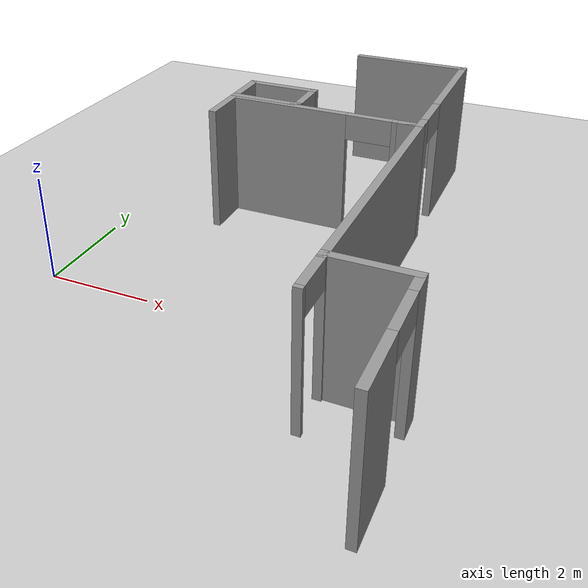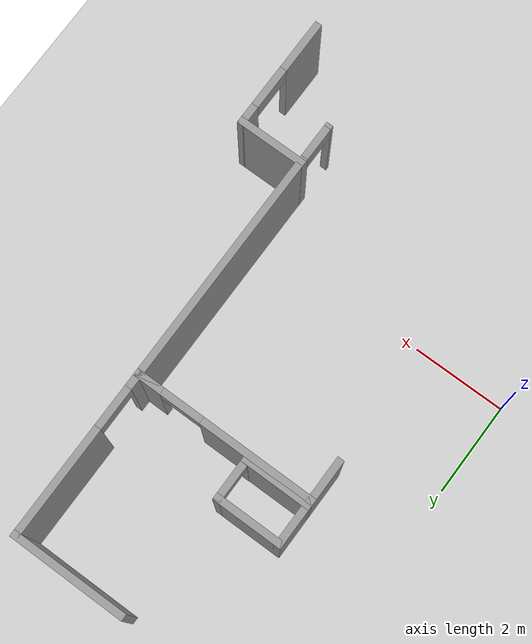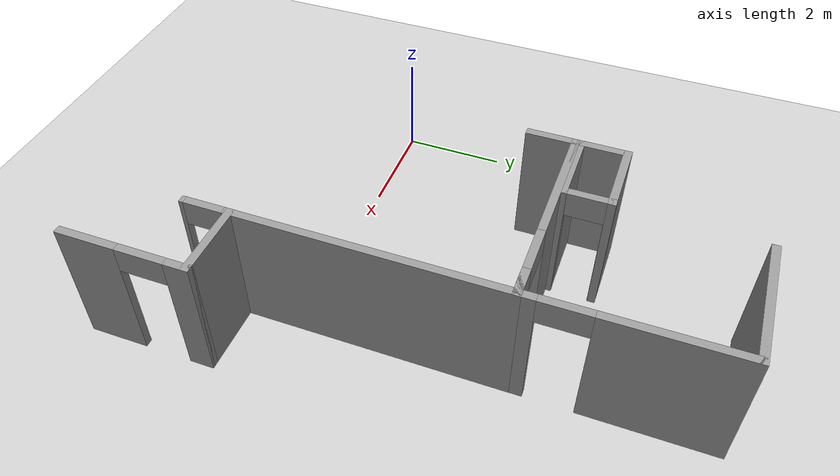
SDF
<sdf version="1.6">
 <world name="default">
  <model name="ground_plane">
   <static>1</static>
   <link name="link">
    <collision name="collision">
     <geometry><plane><normal>0 0 1</normal><size>100 100</size></plane></geometry>
     <surface><friction><ode><mu>100</mu><mu2>50</mu2></ode></friction></surface>
    </collision>
    <visual name="visual">
     <cast_shadows>0</cast_shadows>
     <geometry><plane><normal>0 0 1</normal><size>100 100</size></plane></geometry>
     <material>
      <script><uri>file://media/materials/scripts/gazebo.material</uri><name>Gazebo/Grey</name></script>
     </material>
    </visual>
   </link>
  </model>
  <model name="cma_L3">
   <pose>6.37221 -2.26022 0 0 -0 0</pose>
   <link name="Wall_12">
    <pose>-0.675 0.75 0 0 -0 1.5708</pose>
    <visual name="Wall_12_Visual_0">
     <pose>-0.46 0 1.25 0 -0 0</pose>
     <geometry><box><size>0.08 0.15 2.5</size></box></geometry>
     <material>
      <script><uri>file://media/materials/scripts/gazebo.material</uri><name>Gazebo/Grey</name></script>
      <ambient>1 1 1 1</ambient>
     </material>
    </visual>
    <collision name="Wall_12_Collision_0">
     <geometry><box><size>0.08 0.15 2.5</size></box></geometry>
     <pose>-0.46 0 1.25 0 -0 0</pose>
    </collision>
    <visual name="Wall_12_Visual_1">
     <pose>0.405 0 1.25 0 -0 0</pose>
     <geometry><box><size>0.19 0.15 2.5</size></box></geometry>
     <material>
      <script><uri>file://media/materials/scripts/gazebo.material</uri><name>Gazebo/Grey</name></script>
      <ambient>1 1 1 1</ambient>
     </material>
    </visual>
    <collision name="Wall_12_Collision_1">
     <geometry><box><size>0.19 0.15 2.5</size></box></geometry>
     <pose>0.405 0 1.25 0 -0 0</pose>
    </collision>
    <visual name="Wall_12_Visual_2">
     <pose>-0.055 0 2.25 0 -0 0</pose>
     <geometry><box><size>0.73 0.15 0.5</size></box></geometry>
     <material>
      <script><uri>file://media/materials/scripts/gazebo.material</uri><name>Gazebo/Grey</name></script>
      <ambient>1 1 1 1</ambient>
     </material>
    </visual>
    <collision name="Wall_12_Collision_2">
     <geometry><box><size>0.73 0.15 0.5</size></box></geometry>
     <pose>-0.055 0 2.25 0 -0 0</pose>
    </collision>
   </link>
   <link name="Wall_13">
    <collision name="Wall_13_Collision">
     <geometry><box><size>1.5 0.15 2.5</size></box></geometry>
     <pose>0 0 1.25 0 -0 0</pose>
    </collision>
    <visual name="Wall_13_Visual">
     <pose>0 0 1.25 0 -0 0</pose>
     <geometry><box><size>1.5 0.15 2.5</size></box></geometry>
     <material>
      <script><uri>file://media/materials/scripts/gazebo.material</uri><name>Gazebo/Grey</name></script>
      <ambient>1 1 1 1</ambient>
     </material>
    </visual>
    <pose>0 1.175 0 0 -0 0</pose>
   </link>
   <link name="Wall_14">
    <pose>0.675 0 0 0 0 -1.5708</pose>
    <visual name="Wall_14_Visual_0">
     <pose>-1.0175 0 1.25 0 -0 0</pose>
     <geometry><box><size>0.465 0.15 2.5</size></box></geometry>
     <material>
      <script><uri>file://media/materials/scripts/gazebo.material</uri><name>Gazebo/Grey</name></script>
      <ambient>1 1 1 1</ambient>
     </material>
    </visual>
    <collision name="Wall_14_Collision_0">
     <geometry><box><size>0.465 0.15 2.5</size></box></geometry>
     <pose>-1.0175 0 1.25 0 -0 0</pose>
    </collision>
    <visual name="Wall_14_Visual_1">
     <pose>0.6825 0 1.25 0 -0 0</pose>
     <geometry><box><size>1.135 0.15 2.5</size></box></geometry>
     <material>
      <script><uri>file://media/materials/scripts/gazebo.material</uri><name>Gazebo/Grey</name></script>
      <ambient>1 1 1 1</ambient>
     </material>
    </visual>
    <collision name="Wall_14_Collision_1">
     <geometry><box><size>1.135 0.15 2.5</size></box></geometry>
     <pose>0.6825 0 1.25 0 -0 0</pose>
    </collision>
    <visual name="Wall_14_Visual_2">
     <pose>-0.335 0 2.25 0 -0 0</pose>
     <geometry><box><size>0.9 0.15 0.5</size></box></geometry>
     <material>
      <script><uri>file://media/materials/scripts/gazebo.material</uri><name>Gazebo/Grey</name></script>
      <ambient>1 1 1 1</ambient>
     </material>
    </visual>
    <collision name="Wall_14_Collision_2">
     <geometry><box><size>0.9 0.15 0.5</size></box></geometry>
     <pose>-0.335 0 2.25 0 -0 0</pose>
    </collision>
   </link>
   <static>1</static>
  </model>
  <model name="cma_L5">
   <pose>3.77502 1.45512 0 0 -0 0</pose>
   <link name="Wall_0">
    <collision name="Wall_0_Collision">
     <geometry><box><size>1 0.15 2.5</size></box></geometry>
     <pose>0 0 1.25 0 -0 0</pose>
    </collision>
    <visual name="Wall_0_Visual">
     <pose>0 0 1.25 0 -0 0</pose>
     <geometry><box><size>1 0.15 2.5</size></box></geometry>
     <material>
      <script><uri>file://media/materials/scripts/gazebo.material</uri><name>Gazebo/Grey</name></script>
      <ambient>1 1 1 1</ambient>
     </material>
    </visual>
    <pose>-1.925 2 0 0 -0 1.5708</pose>
   </link>
   <link name="Wall_1">
    <pose>0 2.425 0 0 -0 0</pose>
    <visual name="Wall_1_Visual_0">
     <pose>-0.7525 0 1.25 0 -0 0</pose>
     <geometry><box><size>2.495 0.15 2.5</size></box></geometry>
     <material>
      <script><uri>file://media/materials/scripts/gazebo.material</uri><name>Gazebo/Grey</name></script>
      <ambient>1 1 1 1</ambient>
     </material>
    </visual>
    <collision name="Wall_1_Collision_0">
     <geometry><box><size>2.495 0.15 2.5</size></box></geometry>
     <pose>-0.7525 0 1.25 0 -0 0</pose>
    </collision>
    <visual name="Wall_1_Visual_1">
     <pose>1.6975 0 1.25 0 -0 0</pose>
     <geometry><box><size>0.605 0.15 2.5</size></box></geometry>
     <material>
      <script><uri>file://media/materials/scripts/gazebo.material</uri><name>Gazebo/Grey</name></script>
      <ambient>1 1 1 1</ambient>
     </material>
    </visual>
    <collision name="Wall_1_Collision_1">
     <geometry><box><size>0.605 0.15 2.5</size></box></geometry>
     <pose>1.6975 0 1.25 0 -0 0</pose>
    </collision>
    <visual name="Wall_1_Visual_2">
     <pose>0.945 0 2.25 0 -0 0</pose>
     <geometry><box><size>0.9 0.15 0.5</size></box></geometry>
     <material>
      <script><uri>file://media/materials/scripts/gazebo.material</uri><name>Gazebo/Grey</name></script>
      <ambient>1 1 1 1</ambient>
     </material>
    </visual>
    <collision name="Wall_1_Collision_2">
     <geometry><box><size>0.9 0.15 0.5</size></box></geometry>
     <pose>0.945 0 2.25 0 -0 0</pose>
    </collision>
   </link>
   <link name="Wall_3">
    <collision name="Wall_3_Collision">
     <geometry><box><size>5 0.15 2.5</size></box></geometry>
     <pose>0 0 1.25 0 -0 0</pose>
    </collision>
    <visual name="Wall_3_Visual">
     <pose>0 0 1.25 0 -0 0</pose>
     <geometry><box><size>5 0.15 2.5</size></box></geometry>
     <material>
      <script><uri>file://media/materials/scripts/gazebo.material</uri><name>Gazebo/Grey</name></script>
      <ambient>1 1 1 1</ambient>
     </material>
    </visual>
    <pose>1.925 0 0 0 0 -1.5708</pose>
   </link>
   <static>1</static>
  </model>
  <model name="cma_dispensa">
   <pose>2.52584 4.40119 0 0 -0 0</pose>
   <link name="Wall_5">
    <collision name="Wall_5_Collision">
     <geometry><box><size>1 0.15 2.5</size></box></geometry>
     <pose>0 0 1.25 0 -0 0</pose>
    </collision>
    <visual name="Wall_5_Visual">
     <pose>0 0 1.25 0 -0 0</pose>
     <geometry><box><size>1 0.15 2.5</size></box></geometry>
     <material>
      <script><uri>file://media/materials/scripts/gazebo.material</uri><name>Gazebo/Grey</name></script>
      <ambient>1 1 1 1</ambient>
     </material>
    </visual>
    <pose>-0.675 0 0 0 -0 1.5708</pose>
   </link>
   <link name="Wall_6">
    <collision name="Wall_6_Collision">
     <geometry><box><size>1.5 0.15 2.5</size></box></geometry>
     <pose>0 0 1.25 0 -0 0</pose>
    </collision>
    <visual name="Wall_6_Visual">
     <pose>0 0 1.25 0 -0 0</pose>
     <geometry><box><size>1.5 0.15 2.5</size></box></geometry>
     <material>
      <script><uri>file://media/materials/scripts/gazebo.material</uri><name>Gazebo/Grey</name></script>
      <ambient>1 1 1 1</ambient>
     </material>
    </visual>
    <pose>0 0.425 0 0 -0 0</pose>
   </link>
   <link name="Wall_7">
    <pose>0.675 0 0 0 0 -1.5708</pose>
    <visual name="Wall_7_Visual_0">
     <pose>-0.4275 0 1.25 0 -0 0</pose>
     <geometry><box><size>0.145 0.15 2.5</size></box></geometry>
     <material>
      <script><uri>file://media/materials/scripts/gazebo.material</uri><name>Gazebo/Grey</name></script>
      <ambient>1 1 1 1</ambient>
     </material>
    </visual>
    <collision name="Wall_7_Collision_0">
     <geometry><box><size>0.145 0.15 2.5</size></box></geometry>
     <pose>-0.4275 0 1.25 0 -0 0</pose>
    </collision>
    <visual name="Wall_7_Visual_1">
     <pose>0.4225 0 1.25 0 -0 0</pose>
     <geometry><box><size>0.155 0.15 2.5</size></box></geometry>
     <material>
      <script><uri>file://media/materials/scripts/gazebo.material</uri><name>Gazebo/Grey</name></script>
      <ambient>1 1 1 1</ambient>
     </material>
    </visual>
    <collision name="Wall_7_Collision_1">
     <geometry><box><size>0.155 0.15 2.5</size></box></geometry>
     <pose>0.4225 0 1.25 0 -0 0</pose>
    </collision>
    <visual name="Wall_7_Visual_2">
     <pose>-0.005 0 2.25 0 -0 0</pose>
     <geometry><box><size>0.7 0.15 0.5</size></box></geometry>
     <material>
      <script><uri>file://media/materials/scripts/gazebo.material</uri><name>Gazebo/Grey</name></script>
      <ambient>1 1 1 1</ambient>
     </material>
    </visual>
    <collision name="Wall_7_Collision_2">
     <geometry><box><size>0.7 0.15 0.5</size></box></geometry>
     <pose>-0.005 0 2.25 0 -0 0</pose>
    </collision>
   </link>
   <link name="Wall_8">
    <collision name="Wall_8_Collision">
     <geometry><box><size>1.5 0.15 2.5</size></box></geometry>
     <pose>0 0 1.25 0 -0 0</pose>
    </collision>
    <visual name="Wall_8_Visual">
     <pose>0 0 1.25 0 -0 0</pose>
     <geometry><box><size>1.5 0.15 2.5</size></box></geometry>
     <material>
      <script><uri>file://media/materials/scripts/gazebo.material</uri><name>Gazebo/Grey</name></script>
      <ambient>1 1 1 1</ambient>
     </material>
    </visual>
    <pose>0 -0.425 0 0 -0 3.14159</pose>
   </link>
   <static>1</static>
  </model>
  <model name="cma_area2">
   <pose>4.52275 5.67862 0 0 -0 0</pose>
   <link name="Wall_23">
    <collision name="Wall_23_Collision">
     <geometry><box><size>2.5 0.15 2.5</size></box></geometry>
     <pose>0 0 1.25 0 -0 0</pose>
    </collision>
    <visual name="Wall_23_Visual">
     <pose>0 0 1.25 0 -0 0</pose>
     <geometry><box><size>2.5 0.15 2.5</size></box></geometry>
     <material>
      <script><uri>file://media/materials/scripts/gazebo.material</uri><name>Gazebo/Grey</name></script>
      <ambient>1 1 1 1</ambient>
     </material>
    </visual>
    <pose>0 1.8 0 0 -0 0</pose>
   </link>
   <link name="Wall_24">
    <pose>1.175 0 0 0 0 -1.5708</pose>
    <visual name="Wall_24_Visual_0">
     <pose>-0.6425 0 1.25 0 -0 0</pose>
     <geometry><box><size>2.465 0.15 2.5</size></box></geometry>
     <material>
      <script><uri>file://media/materials/scripts/gazebo.material</uri><name>Gazebo/Grey</name></script>
      <ambient>1 1 1 1</ambient>
     </material>
    </visual>
    <collision name="Wall_24_Collision_0">
     <geometry><box><size>2.465 0.15 2.5</size></box></geometry>
     <pose>-0.6425 0 1.25 0 -0 0</pose>
    </collision>
    <visual name="Wall_24_Visual_1">
     <pose>1.6825 0 1.25 0 -0 0</pose>
     <geometry><box><size>0.385 0.15 2.5</size></box></geometry>
     <material>
      <script><uri>file://media/materials/scripts/gazebo.material</uri><name>Gazebo/Grey</name></script>
      <ambient>1 1 1 1</ambient>
     </material>
    </visual>
    <collision name="Wall_24_Collision_1">
     <geometry><box><size>0.385 0.15 2.5</size></box></geometry>
     <pose>1.6825 0 1.25 0 -0 0</pose>
    </collision>
    <visual name="Wall_24_Visual_2">
     <pose>1.04 0 2.25 0 -0 0</pose>
     <geometry><box><size>0.9 0.15 0.5</size></box></geometry>
     <material>
      <script><uri>file://media/materials/scripts/gazebo.material</uri><name>Gazebo/Grey</name></script>
      <ambient>1 1 1 1</ambient>
     </material>
    </visual>
    <collision name="Wall_24_Collision_2">
     <geometry><box><size>0.9 0.15 0.5</size></box></geometry>
     <pose>1.04 0 2.25 0 -0 0</pose>
    </collision>
   </link>
   <link name="Wall_25">
    <collision name="Wall_25_Collision">
     <geometry><box><size>0.5 0.15 2.5</size></box></geometry>
     <pose>0 0 1.25 0 -0 0</pose>
    </collision>
    <visual name="Wall_25_Visual">
     <pose>0 0 1.25 0 -0 0</pose>
     <geometry><box><size>0.5 0.15 2.5</size></box></geometry>
     <material>
      <script><uri>file://media/materials/scripts/gazebo.material</uri><name>Gazebo/Grey</name></script>
      <ambient>1 1 1 1</ambient>
     </material>
    </visual>
    <pose>1 -1.8 0 0 -0 3.14159</pose>
   </link>
   <static>1</static>
  </model>
 </world>
</sdf>
